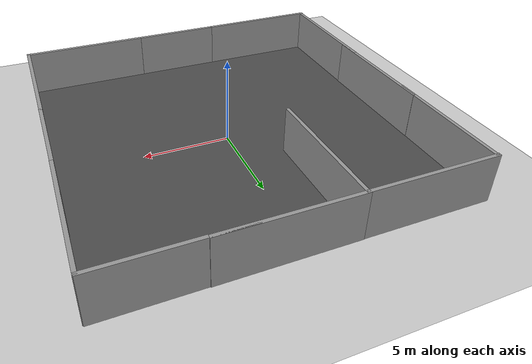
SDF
<sdf version="1.7">
 <world name="default">
  <light name="sun" type="directional">
   <pose>0 0 10 0 -0 0</pose>
   <diffuse>0.8 0.8 0.8 1</diffuse>
   <specular>0.2 0.2 0.2 1</specular>
   <attenuation>
    <range>1000</range>
    <constant>0.9</constant>
    <linear>0.01</linear>
    <quadratic>0.001</quadratic>
   </attenuation>
   <direction>-0.5 0.1 -0.9</direction>
   <spot><inner_angle>0</inner_angle><outer_angle>0</outer_angle><falloff>0</falloff></spot>
  </light>
  <model name="ground_plane">
   <static>1</static>
   <link name="link">
    <collision name="collision">
     <geometry><plane><normal>0 0 1</normal><size>100 100</size></plane></geometry>
     <surface>
      <contact><collide_bitmask>65535</collide_bitmask></contact>
      <friction><ode><mu>100</mu><mu2>50</mu2></ode></friction>
     </surface>
    </collision>
    <visual name="visual">
     <cast_shadows>0</cast_shadows>
     <geometry><plane><normal>0 0 1</normal><size>100 100</size></plane></geometry>
     <material>
      <script><uri>file://media/materials/scripts/gazebo.material</uri><name>Gazebo/Grey</name></script>
     </material>
    </visual>
   </link>
  </model>
  <model name="asphalt_plane">
   <pose>-0.214881 -0.140097 0 0 -0 0</pose>
   <static>1</static>
   <link name="link">
    <collision name="collision"><geometry><box><size>20 20 0.1</size></box></geometry></collision>
    <visual name="visual">
     <cast_shadows>0</cast_shadows>
     <geometry><box><size>20 20 0.1</size></box></geometry>
     <material>
      <script>
       <uri>model://asphalt_plane/materials/scripts</uri>
       <uri>model://asphalt_plane/materials/textures</uri>
       <name>vrc/asphalt</name>
      </script>
     </material>
    </visual>
   </link>
  </model>
  <physics name="default_physics" default="0" type="ode">
   <ode>
    <solver>
     <type>quick</type>
     <iters>10</iters>
     <sor>1.3</sor>
     <use_dynamic_moi_rescaling>0</use_dynamic_moi_rescaling>
    </solver>
    <constraints>
     <cfm>0</cfm>
     <erp>0.2</erp>
     <contact_max_correcting_vel>100</contact_max_correcting_vel>
     <contact_surface_layer>0.001</contact_surface_layer>
    </constraints>
   </ode>
   <max_step_size>0.002</max_step_size>
   <real_time_factor>1</real_time_factor>
   <real_time_update_rate>500</real_time_update_rate>
  </physics>
  <model name="pallet 5 multi boxes">
   <pose>0.334986 3.33764 1.63184 0 0 -1.57575</pose>
   <static>1</static>
   <self_collide>1</self_collide>
  </model>
  <model name="pallet 17 multi boxes">
   <pose>0.334986 3.33764 2.31 0 0 -1.57575</pose>
   <static>1</static>
   <self_collide>1</self_collide>
  </model>
  <model name="pallet 6 multi boxes">
   <pose>-2.18966 3.35192 3.27046 0 0 -1.58092</pose>
   <static>1</static>
   <self_collide>1</self_collide>
  </model>
  <model name="pallet 15 multi boxes">
   <pose>-4.68966 3.35192 3.27046 0 0 -1.58092</pose>
   <static>1</static>
   <self_collide>1</self_collide>
  </model>
  <model name="pallet 16 multi boxes">
   <pose>-5.88966 3.35192 3.27046 0 0 -1.58092</pose>
   <static>1</static>
   <self_collide>1</self_collide>
  </model>
  <model name="grey_wall">
   <static>1</static>
   <link name="link">
    <pose>0 0 1.4 0 -0 0</pose>
    <collision name="collision"><geometry><box><size>7.5 0.2 2.8</size></box></geometry></collision>
    <visual name="visual">
     <cast_shadows>0</cast_shadows>
     <geometry><box><size>7.5 0.2 2.8</size></box></geometry>
     <material>
      <script>
       <uri>model://grey_wall/materials/scripts</uri>
       <uri>model://grey_wall/materials/textures</uri>
       <name>vrc/grey_wall</name>
      </script>
     </material>
    </visual>
   </link>
   <pose>-9.93081 -0.04156 0 0 0 -1.57</pose>
  </model>
  <model name="grey_wall2">
   <static>1</static>
   <link name="link">
    <pose>0 0 1.4 0 -0 0</pose>
    <collision name="collision"><geometry><box><size>7.5 0.2 2.8</size></box></geometry></collision>
    <visual name="visual">
     <cast_shadows>0</cast_shadows>
     <geometry><box><size>7.5 0.2 2.8</size></box></geometry>
     <material>
      <script>
       <uri>model://grey_wall/materials/scripts</uri>
       <uri>model://grey_wall/materials/textures</uri>
       <name>vrc/grey_wall</name>
      </script>
     </material>
    </visual>
   </link>
   <pose>-9.9356 6.19294 0 0 -0 1.5672</pose>
  </model>
  <model name="yolobot">
   <link name="base_link">
    <inertial>
     <pose>0 0 -0.025 0 -0 0</pose>
     <mass>1</mass>
     <inertia>
      <ixx>0.000333333</ixx>
      <ixy>0</ixy>
      <ixz>0</ixz>
      <iyy>0.000333333</iyy>
      <iyz>0</iyz>
      <izz>0.000333333</izz>
     </inertia>
    </inertial>
    <collision name="base_link_fixed_joint_lump__collision_chassis_collision">
     <geometry><box><size>0.2 0.1 0.05</size></box></geometry>
    </collision>
    <visual name="base_link_fixed_joint_lump__visual_chassis_visual">
     <geometry><box><size>0.2 0.1 0.05</size></box></geometry>
    </visual>
    <visual name="base_link_fixed_joint_lump__rgb_cam_camera_link_visual_1">
     <pose>0.04 0 0.2 0 -0 0</pose>
     <geometry><box><size>0.01 0.01 0.01</size></box></geometry>
    </visual>
    <sensor name="rgb_cam" type="camera">
     <always_on>1</always_on>
     <update_rate>10</update_rate>
     <camera name="rgb_cam">
      <horizontal_fov>1.39626</horizontal_fov>
      <image><width>640</width><height>480</height><format>R8G8B8</format></image>
      <clip><near>0.005</near><far>20</far></clip>
     </camera>
     <plugin name="camera_controller" filename="libgazebo_ros_camera.so">
      <alwaysOn>1</alwaysOn>
      <updateRate>0.0</updateRate>
      <cameraName>rgb_cam</cameraName>
      <imageTopicName>image_raw</imageTopicName>
      <cameraInfoTopicName>camera_info</cameraInfoTopicName>
      <frameName>rgb_cam_camera_link_frame</frameName>
      <hackBaseline>0.07</hackBaseline>
      <distortionK1>0.0</distortionK1>
      <distortionK2>0.0</distortionK2>
      <distortionK3>0.0</distortionK3>
      <distortionT1>0.0</distortionT1>
      <distortionT2>0.0</distortionT2>
     </plugin>
     <pose>0.05 0 0.2 0 -0 0</pose>
    </sensor>
   </link>
   <joint name="front_yaw_joint" type="revolute">
    <pose relative_to="base_link">0.08 0 -0.05 0 -0 0</pose>
    <parent>base_link</parent>
    <child>front_yaw_link</child>
    <axis>
     <xyz>0 0 1</xyz>
     <limit><effort>1000</effort><velocity>100</velocity><lower>-1e+16</lower><upper>1e+16</upper></limit>
     <dynamics>
      <damping>0</damping>
      <friction>0.1</friction>
      <spring_reference>0</spring_reference>
      <spring_stiffness>0</spring_stiffness>
     </dynamics>
    </axis>
   </joint>
   <link name="front_yaw_link">
    <pose relative_to="front_yaw_joint">0 0 0 0 -0 0</pose>
    <inertial>
     <pose>0 0 0 -0 1.5707 1.5707</pose>
     <mass>0.001</mass>
     <inertia>
      <ixx>5.14583e-09</ixx>
      <ixy>0</ixy>
      <ixz>0</ixz>
      <iyy>5.14583e-09</iyy>
      <iyz>0</iyz>
      <izz>1.0125e-08</izz>
     </inertia>
    </inertial>
    <collision name="front_yaw_link_fixed_joint_lump__link_right_wheel_collision_collision">
     <pose>0 0 0 1.57089 1.57079 -3.14159</pose>
     <geometry><cylinder><length>0.001</length><radius>0.0045</radius></cylinder></geometry>
    </collision>
   </link>
   <joint name="front_roll_joint" type="revolute">
    <pose relative_to="front_yaw_link">0 0 0 0 -0 0</pose>
    <parent>front_yaw_link</parent>
    <child>front_roll_link</child>
    <axis>
     <xyz>1 0 0</xyz>
     <limit><effort>1000</effort><velocity>100</velocity><lower>-1e+16</lower><upper>1e+16</upper></limit>
     <dynamics>
      <damping>0</damping>
      <friction>0.1</friction>
      <spring_reference>0</spring_reference>
      <spring_stiffness>0</spring_stiffness>
     </dynamics>
    </axis>
   </joint>
   <link name="front_roll_link">
    <pose relative_to="front_roll_joint">0 0 0 0 -0 0</pose>
    <inertial>
     <pose>0 0 0 -0 1.5707 1.5707</pose>
     <mass>0.001</mass>
     <inertia>
      <ixx>5.14583e-09</ixx>
      <ixy>0</ixy>
      <ixz>0</ixz>
      <iyy>5.14583e-09</iyy>
      <iyz>0</iyz>
      <izz>1.0125e-08</izz>
     </inertia>
    </inertial>
    <collision name="front_roll_link_fixed_joint_lump__link_right_wheel_collision_collision">
     <pose>0 0 0 1.57089 1.57079 -3.14159</pose>
     <geometry><cylinder><length>0.001</length><radius>0.0045</radius></cylinder></geometry>
    </collision>
   </link>
   <joint name="front_pitch_joint" type="revolute">
    <pose relative_to="front_roll_link">0 0 0 0 -0 0</pose>
    <parent>front_roll_link</parent>
    <child>front_pitch_link</child>
    <axis>
     <xyz>0 1 0</xyz>
     <limit><effort>1000</effort><velocity>100</velocity><lower>-1e+16</lower><upper>1e+16</upper></limit>
     <dynamics>
      <damping>0</damping>
      <friction>0.1</friction>
      <spring_reference>0</spring_reference>
      <spring_stiffness>0</spring_stiffness>
     </dynamics>
    </axis>
   </joint>
   <link name="front_pitch_link">
    <pose relative_to="front_pitch_joint">0 0 0 0 -0 0</pose>
    <inertial>
     <pose>0 0 0 -0 1.5707 1.5707</pose>
     <mass>0.001</mass>
     <inertia><ixx>4e-08</ixx><ixy>0</ixy><ixz>0</ixz><iyy>4e-08</iyy><iyz>0</iyz><izz>4e-08</izz></inertia>
    </inertial>
    <collision name="front_pitch_link_fixed_joint_lump__front_collision_collision">
     <pose>0 0 0 1.57089 1.57079 -3.14159</pose>
     <geometry><sphere><radius>0.01</radius></sphere></geometry>
    </collision>
    <visual name="front_pitch_link_fixed_joint_lump__front_visual_visual">
     <pose>0 0 0 1.57089 1.57079 -3.14159</pose>
     <geometry><sphere><radius>0.01</radius></sphere></geometry>
    </visual>
   </link>
   <joint name="joint_left_wheel" type="revolute">
    <pose relative_to="base_link">-0.05 -0.05 -0.025 0 -0 0</pose>
    <parent>base_link</parent>
    <child>left_wheel</child>
    <axis>
     <xyz>0 1 0</xyz>
     <limit><effort>10000</effort><velocity>1000</velocity><lower>-1e+16</lower><upper>1e+16</upper></limit>
     <dynamics><spring_reference>0</spring_reference><spring_stiffness>0</spring_stiffness></dynamics>
    </axis>
   </joint>
   <link name="left_wheel">
    <pose relative_to="joint_left_wheel">0 0 0 0 -0 0</pose>
    <inertial>
     <pose>0 0 0 -0 1.5707 1.5707</pose>
     <mass>0.2</mass>
     <inertia>
      <ixx>3.12667e-05</ixx>
      <ixy>0</ixy>
      <ixz>0</ixz>
      <iyy>3.12667e-05</iyy>
      <iyz>0</iyz>
      <izz>6.25e-05</izz>
     </inertia>
    </inertial>
    <collision name="left_wheel_fixed_joint_lump__link_right_wheel_collision_collision">
     <pose>0 0 0 1.57089 1.57079 -3.14159</pose>
     <geometry><cylinder><length>0.01</length><radius>0.035</radius></cylinder></geometry>
    </collision>
    <visual name="left_wheel_fixed_joint_lump__link_right_wheel_visual_visual">
     <pose>0 0 0 1.57089 1.57079 -3.14159</pose>
     <geometry><cylinder><length>0.01</length><radius>0.035</radius></cylinder></geometry>
    </visual>
   </link>
   <joint name="joint_right_wheel" type="revolute">
    <pose relative_to="base_link">-0.05 0.05 -0.025 0 -0 0</pose>
    <parent>base_link</parent>
    <child>right_wheel</child>
    <axis>
     <xyz>0 1 0</xyz>
     <limit><effort>10000</effort><velocity>1000</velocity><lower>-1e+16</lower><upper>1e+16</upper></limit>
     <dynamics><spring_reference>0</spring_reference><spring_stiffness>0</spring_stiffness></dynamics>
    </axis>
   </joint>
   <link name="right_wheel">
    <pose relative_to="joint_right_wheel">0 0 0 0 -0 0</pose>
    <inertial>
     <pose>0 0 0 -0 1.5707 1.5707</pose>
     <mass>0.2</mass>
     <inertia>
      <ixx>3.12667e-05</ixx>
      <ixy>0</ixy>
      <ixz>0</ixz>
      <iyy>3.12667e-05</iyy>
      <iyz>0</iyz>
      <izz>6.25e-05</izz>
     </inertia>
    </inertial>
    <collision name="right_wheel_fixed_joint_lump__link_right_wheel_collision_collision">
     <pose>0 0 0 1.57089 1.57079 -3.14159</pose>
     <geometry><cylinder><length>0.01</length><radius>0.035</radius></cylinder></geometry>
    </collision>
    <visual name="right_wheel_fixed_joint_lump__link_right_wheel_visual_visual">
     <pose>0 0 0 1.57089 1.57079 -3.14159</pose>
     <geometry><cylinder><length>0.01</length><radius>0.035</radius></cylinder></geometry>
    </visual>
   </link>
   <plugin name="gazebo_ros_control" filename="libgazebo_ros_control.so">
    <robotNamespace>/yolobot</robotNamespace>
    <robotParam>/robot_description</robotParam>
    <robotSimType>gazebo_ros_control/DefaultRobotHWSim</robotSimType>
   </plugin>
   <plugin name="differential_drive_controller" filename="libgazebo_ros_diff_drive.so">
    <ros><namespace>/yolobot</namespace></ros>
    <left_joint>joint_right_wheel</left_joint>
    <right_joint>joint_left_wheel</right_joint>
    <wheel_separation>0.1</wheel_separation>
    <wheel_diameter>0.025</wheel_diameter>
    <max_wheel_torque>0.1</max_wheel_torque>
    <max_wheel_acceleration>1.0</max_wheel_acceleration>
    <publish_odom>1</publish_odom>
    <publish_odom_tf>1</publish_odom_tf>
    <odometry_frame>odom</odometry_frame>
    <robot_base_frame>chassis</robot_base_frame>
   </plugin>
   <static>0</static>
   <plugin name="gazebo_ros_imu_controller" filename="libgazebo_ros_imu.so">
    <robotNamespace>/yolobot/</robotNamespace>
    <topicName>imu/data3</topicName>
    <serviceName>imu/service</serviceName>
    <gaussianNoise>0</gaussianNoise>
    <rpyOffsets>0 0 0</rpyOffsets>
    <updateRate>50.0</updateRate>
    <alwaysOn>1</alwaysOn>
    <gaussianNoise>0</gaussianNoise>
    <bodyName>base_link</bodyName>
    <xyzOffset>0 0 0</xyzOffset>
    <rpyOffset>0 -0 0</rpyOffset>
   </plugin>
   <pose>0.044311 7.27424 0.106719 -2.1e-05 0.064916 -0.002113</pose>
  </model>
  <gravity>0 0 -9.8066</gravity>
  <magnetic_field>6e-06 2.3e-05 -4.2e-05</magnetic_field>
  <atmosphere type="adiabatic"/>
  <scene><ambient>0.4 0.4 0.4 1</ambient><background>0.7 0.7 0.7 1</background><shadows>1</shadows></scene>
  <audio><device>default</device></audio>
  <spherical_coordinates>
   <surface_model>EARTH_WGS84</surface_model>
   <latitude_deg>0</latitude_deg>
   <longitude_deg>0</longitude_deg>
   <elevation>0</elevation>
   <heading_deg>0</heading_deg>
  </spherical_coordinates>
  <light name="user_point_light_0" type="point">
   <pose>7.15041 -7.83054 1 0 -0 0</pose>
   <diffuse>0.5 0.5 0.5 1</diffuse>
   <specular>0.1 0.1 0.1 1</specular>
   <attenuation>
    <range>20</range>
    <constant>0.5</constant>
    <linear>0.01</linear>
    <quadratic>0.001</quadratic>
   </attenuation>
   <cast_shadows>0</cast_shadows>
   <direction>0 0 -1</direction>
   <spot><inner_angle>0</inner_angle><outer_angle>0</outer_angle><falloff>0</falloff></spot>
  </light>
  <light name="user_point_light_1" type="point">
   <pose>-5.74181 2.72462 1 0 -0 0</pose>
   <diffuse>0.5 0.5 0.5 1</diffuse>
   <specular>0.1 0.1 0.1 1</specular>
   <attenuation>
    <range>20</range>
    <constant>0.5</constant>
    <linear>0.01</linear>
    <quadratic>0.001</quadratic>
   </attenuation>
   <cast_shadows>0</cast_shadows>
   <direction>0 0 -1</direction>
   <spot><inner_angle>0</inner_angle><outer_angle>0</outer_angle><falloff>0</falloff></spot>
  </light>
  <model name="grey_wall_0">
   <static>1</static>
   <link name="link">
    <pose>0 0 1.4 0 -0 0</pose>
    <collision name="collision"><geometry><box><size>7.5 0.2 2.8</size></box></geometry></collision>
    <visual name="visual">
     <cast_shadows>0</cast_shadows>
     <geometry><box><size>7.5 0.2 2.8</size></box></geometry>
     <material>
      <script>
       <uri>model://grey_wall/materials/scripts</uri>
       <uri>model://grey_wall/materials/textures</uri>
       <name>vrc/grey_wall</name>
      </script>
     </material>
    </visual>
   </link>
   <pose>-9.95995 -6.14117 0 0 0 -1.57673</pose>
  </model>
  <model name="grey_wall_1">
   <static>1</static>
   <link name="link">
    <pose>0 0 1.4 0 -0 0</pose>
    <collision name="collision"><geometry><box><size>7.5 0.2 2.8</size></box></geometry></collision>
    <visual name="visual">
     <cast_shadows>0</cast_shadows>
     <geometry><box><size>7.5 0.2 2.8</size></box></geometry>
     <material>
      <script>
       <uri>model://grey_wall/materials/scripts</uri>
       <uri>model://grey_wall/materials/textures</uri>
       <name>vrc/grey_wall</name>
      </script>
     </material>
    </visual>
   </link>
   <pose>-6.31095 9.9124 0 0 -0 0</pose>
  </model>
  <model name="grey_wall_2">
   <static>1</static>
   <link name="link">
    <pose>0 0 1.4 0 -0 0</pose>
    <collision name="collision"><geometry><box><size>7.5 0.2 2.8</size></box></geometry></collision>
    <visual name="visual">
     <cast_shadows>0</cast_shadows>
     <geometry><box><size>7.5 0.2 2.8</size></box></geometry>
     <material>
      <script>
       <uri>model://grey_wall/materials/scripts</uri>
       <uri>model://grey_wall/materials/textures</uri>
       <name>vrc/grey_wall</name>
      </script>
     </material>
    </visual>
   </link>
   <pose>0.979912 9.92966 0 0 -0 0</pose>
  </model>
  <model name="grey_wall_3">
   <static>1</static>
   <link name="link">
    <pose>0 0 1.4 0 -0 0</pose>
    <collision name="collision"><geometry><box><size>7.5 0.2 2.8</size></box></geometry></collision>
    <visual name="visual">
     <cast_shadows>0</cast_shadows>
     <geometry><box><size>7.5 0.2 2.8</size></box></geometry>
     <material>
      <script>
       <uri>model://grey_wall/materials/scripts</uri>
       <uri>model://grey_wall/materials/textures</uri>
       <name>vrc/grey_wall</name>
      </script>
     </material>
    </visual>
   </link>
   <pose>6.21958 9.9005 0 0 -0 0</pose>
  </model>
  <model name="grey_wall_4">
   <static>1</static>
   <link name="link">
    <pose>0 0 1.4 0 -0 0</pose>
    <collision name="collision"><geometry><box><size>7.5 0.2 2.8</size></box></geometry></collision>
    <visual name="visual">
     <cast_shadows>0</cast_shadows>
     <geometry><box><size>7.5 0.2 2.8</size></box></geometry>
     <material>
      <script>
       <uri>model://grey_wall/materials/scripts</uri>
       <uri>model://grey_wall/materials/textures</uri>
       <name>vrc/grey_wall</name>
      </script>
     </material>
    </visual>
   </link>
   <pose>6.23963 -9.94342 0 0 -0 0</pose>
  </model>
  <model name="grey_wall_5">
   <static>1</static>
   <link name="link">
    <pose>0 0 1.4 0 -0 0</pose>
    <collision name="collision"><geometry><box><size>7.5 0.2 2.8</size></box></geometry></collision>
    <visual name="visual">
     <cast_shadows>0</cast_shadows>
     <geometry><box><size>7.5 0.2 2.8</size></box></geometry>
     <material>
      <script>
       <uri>model://grey_wall/materials/scripts</uri>
       <uri>model://grey_wall/materials/textures</uri>
       <name>vrc/grey_wall</name>
      </script>
     </material>
    </visual>
   </link>
   <pose>1.03242 -9.95278 0 0 -0 0</pose>
  </model>
  <model name="grey_wall_6">
   <static>1</static>
   <link name="link">
    <pose>0 0 1.4 0 -0 0</pose>
    <collision name="collision"><geometry><box><size>7.5 0.2 2.8</size></box></geometry></collision>
    <visual name="visual">
     <cast_shadows>0</cast_shadows>
     <geometry><box><size>7.5 0.2 2.8</size></box></geometry>
     <material>
      <script>
       <uri>model://grey_wall/materials/scripts</uri>
       <uri>model://grey_wall/materials/textures</uri>
       <name>vrc/grey_wall</name>
      </script>
     </material>
    </visual>
   </link>
   <pose>-6.35477 -9.95723 0 0 -0 0</pose>
  </model>
  <model name="grey_wall_7">
   <static>1</static>
   <link name="link">
    <pose>0 0 1.4 0 -0 0</pose>
    <collision name="collision"><geometry><box><size>7.5 0.2 2.8</size></box></geometry></collision>
    <visual name="visual">
     <cast_shadows>0</cast_shadows>
     <geometry><box><size>7.5 0.2 2.8</size></box></geometry>
     <material>
      <script>
       <uri>model://grey_wall/materials/scripts</uri>
       <uri>model://grey_wall/materials/textures</uri>
       <name>vrc/grey_wall</name>
      </script>
     </material>
    </visual>
   </link>
   <pose>9.89643 -6.25645 0 0 0 -1.56615</pose>
  </model>
  <model name="grey_wall_8">
   <static>1</static>
   <link name="link">
    <pose>0 0 1.4 0 -0 0</pose>
    <collision name="collision"><geometry><box><size>7.5 0.2 2.8</size></box></geometry></collision>
    <visual name="visual">
     <cast_shadows>0</cast_shadows>
     <geometry><box><size>7.5 0.2 2.8</size></box></geometry>
     <material>
      <script>
       <uri>model://grey_wall/materials/scripts</uri>
       <uri>model://grey_wall/materials/textures</uri>
       <name>vrc/grey_wall</name>
      </script>
     </material>
    </visual>
   </link>
   <pose>9.87736 1.15641 0 0 0 -1.56844</pose>
  </model>
  <model name="grey_wall_9">
   <static>1</static>
   <link name="link">
    <pose>0 0 1.4 0 -0 0</pose>
    <collision name="collision"><geometry><box><size>7.5 0.2 2.8</size></box></geometry></collision>
    <visual name="visual">
     <cast_shadows>0</cast_shadows>
     <geometry><box><size>7.5 0.2 2.8</size></box></geometry>
     <material>
      <script>
       <uri>model://grey_wall/materials/scripts</uri>
       <uri>model://grey_wall/materials/textures</uri>
       <name>vrc/grey_wall</name>
      </script>
     </material>
    </visual>
   </link>
   <pose>9.8931 6.19908 0 0 -0 1.56869</pose>
  </model>
  <model name="grey_wall_10">
   <static>1</static>
   <link name="link">
    <pose>0 0 1.4 0 -0 0</pose>
    <collision name="collision"><geometry><box><size>7.5 0.2 2.8</size></box></geometry></collision>
    <visual name="visual">
     <cast_shadows>0</cast_shadows>
     <geometry><box><size>7.5 0.2 2.8</size></box></geometry>
     <material>
      <script>
       <uri>model://grey_wall/materials/scripts</uri>
       <uri>model://grey_wall/materials/textures</uri>
       <name>vrc/grey_wall</name>
      </script>
     </material>
    </visual>
   </link>
   <pose>-2.6213 6.09157 0 0 0 -1.56224</pose>
  </model>
  <model name="file_box_1">
   <link name="link_0">
    <visual name="visual">
     <geometry><mesh><uri>model://file_box_1/meshes/meshes/body.dae</uri><scale>1 1 1</scale></mesh></geometry>
     <material>
      <script>
       <uri>model://file_box_1/materials/scripts</uri>
       <uri>model://file_box_1/materials/textures</uri>
       <name>file_box</name>
      </script>
     </material>
    </visual>
    <collision name="collision">
     <geometry><mesh><uri>model://file_box_1/meshes/meshes/body.dae</uri><scale>1 1 1</scale></mesh></geometry>
    </collision>
   </link>
   <link name="link_1">
    <visual name="visual">
     <geometry><mesh><uri>model://file_box_1/meshes/meshes/tag.dae</uri><scale>1 1 1</scale></mesh></geometry>
     <material>
      <lighting>1</lighting>
      <ambient>1 1 1 1</ambient>
      <diffuse>1 1 1 1</diffuse>
      <specular>0.01 0.01 0.01 1</specular>
      <emissive>0 0 0 1</emissive>
     </material>
    </visual>
    <collision name="collision">
     <geometry><mesh><uri>model://file_box_1/meshes/meshes/tag.dae</uri><scale>1 1 1</scale></mesh></geometry>
    </collision>
   </link>
   <static>1</static>
   <pose>-8.89521 9.56857 0 0 -0 0</pose>
  </model>
  <model name="file_box_1_0">
   <link name="link_0">
    <visual name="visual">
     <geometry><mesh><uri>model://file_box_1/meshes/meshes/body.dae</uri><scale>1 1 1</scale></mesh></geometry>
     <material>
      <script>
       <uri>model://file_box_1/materials/scripts</uri>
       <uri>model://file_box_1/materials/textures</uri>
       <name>file_box</name>
      </script>
     </material>
    </visual>
    <collision name="collision">
     <geometry><mesh><uri>model://file_box_1/meshes/meshes/body.dae</uri><scale>1 1 1</scale></mesh></geometry>
    </collision>
   </link>
   <link name="link_1">
    <visual name="visual">
     <geometry><mesh><uri>model://file_box_1/meshes/meshes/tag.dae</uri><scale>1 1 1</scale></mesh></geometry>
     <material>
      <lighting>1</lighting>
      <ambient>1 1 1 1</ambient>
      <diffuse>1 1 1 1</diffuse>
      <specular>0.01 0.01 0.01 1</specular>
      <emissive>0 0 0 1</emissive>
     </material>
    </visual>
    <collision name="collision">
     <geometry><mesh><uri>model://file_box_1/meshes/meshes/tag.dae</uri><scale>1 1 1</scale></mesh></geometry>
    </collision>
   </link>
   <static>1</static>
   <pose>-8.88694 9.57319 0.263292 0 -0 0</pose>
  </model>
 </world>
</sdf>
